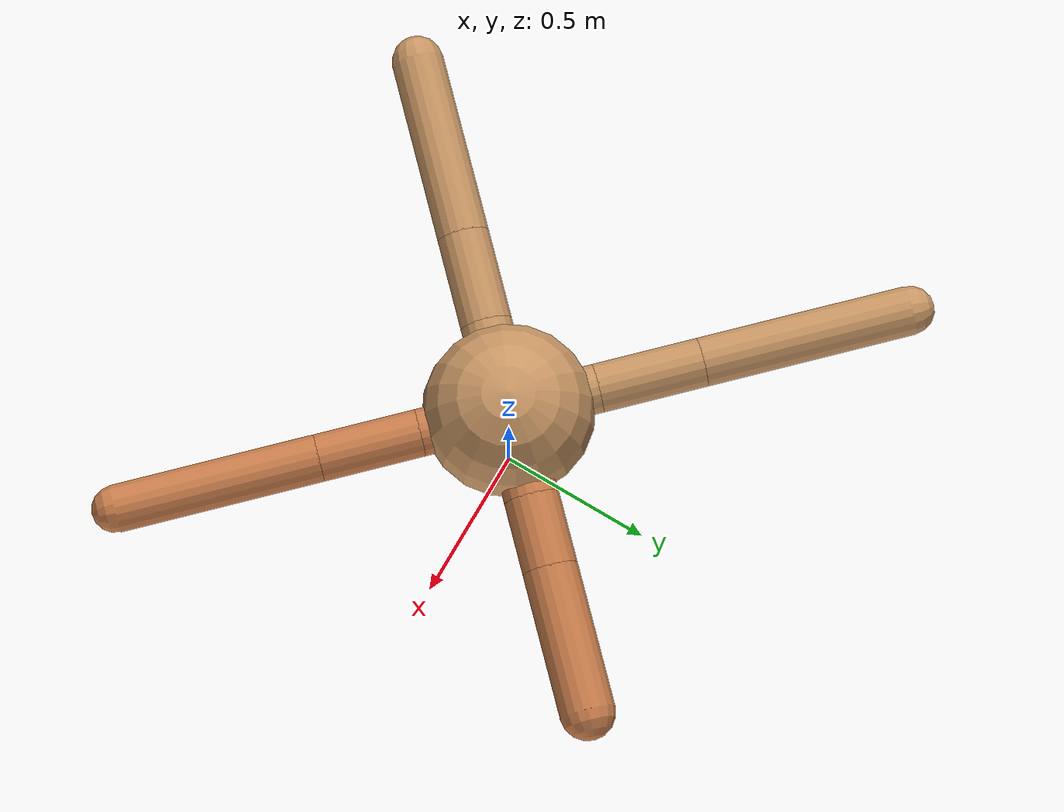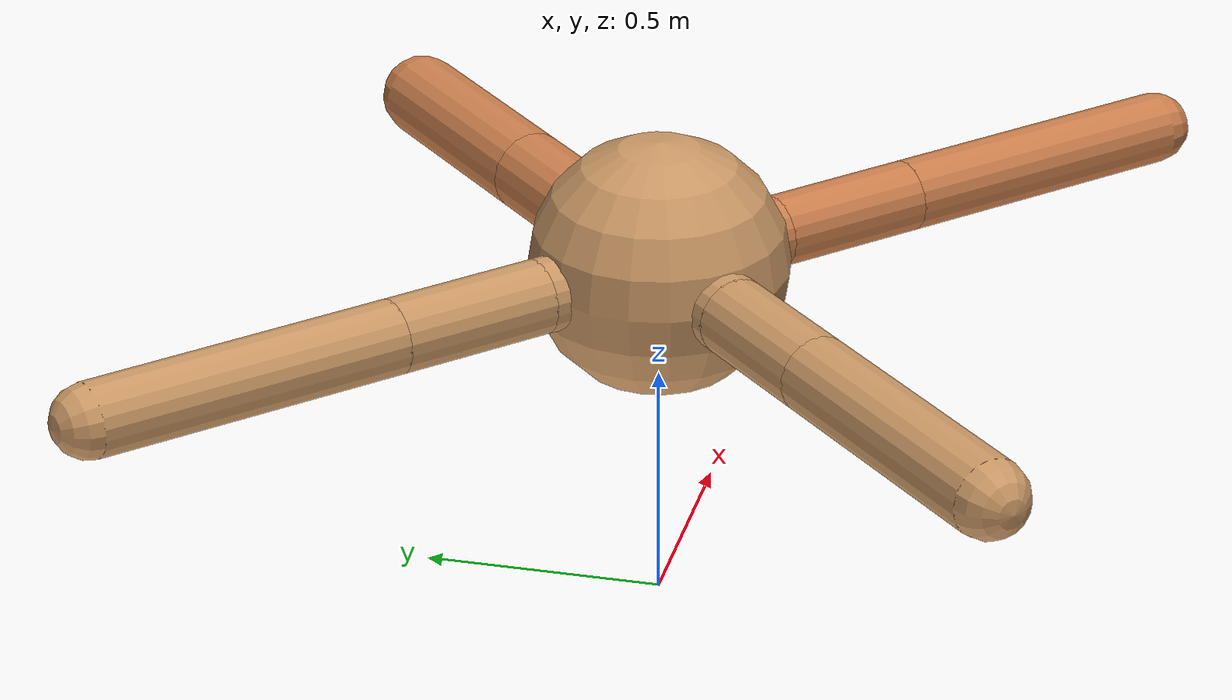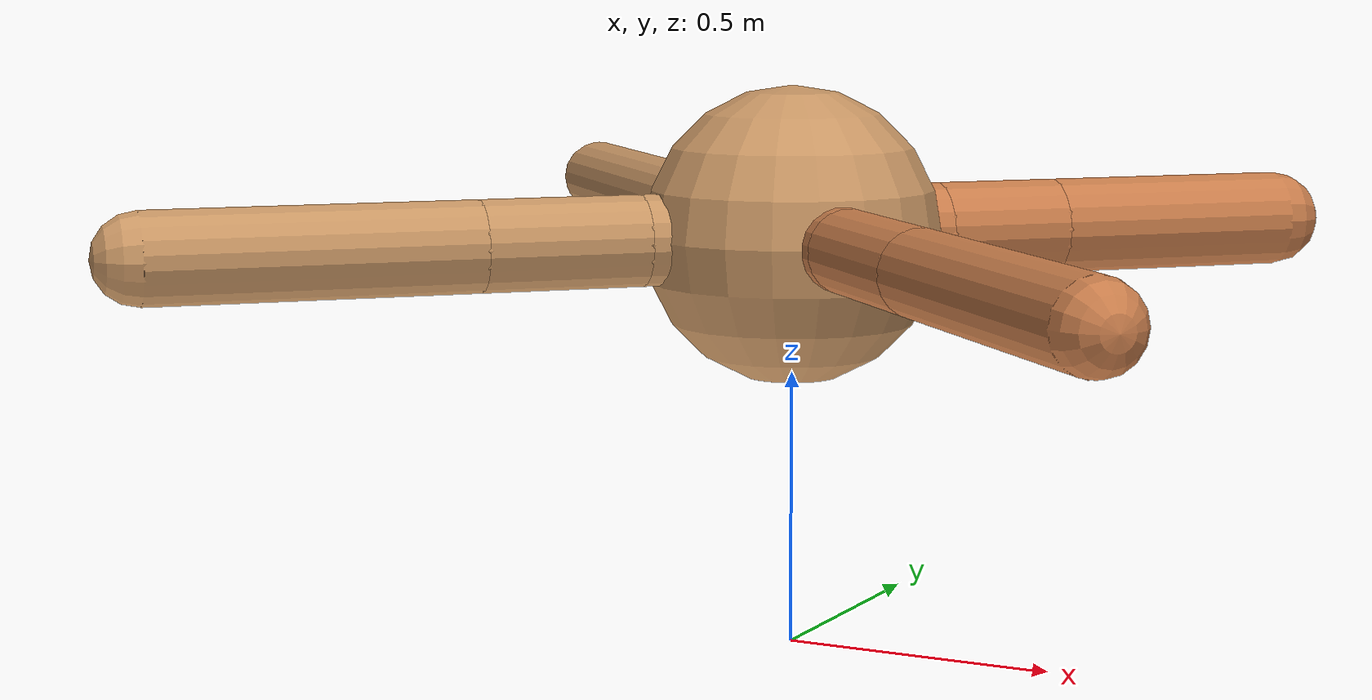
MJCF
<?xml version="1.0" ?>
<mujoco model="ant">

	<compiler angle="degree" coordinate="local" inertiafromgeom="true"/>

	<option integrator="RK4" timestep="0.01"/>

	<custom>

		<numeric data="0.0 0.0 0.55 1.0 0.0 0.0 0.0 0.0 1.0 0.0 -1.0 0.0 -1.0 0.0 1.0" name="init_qpos"/>

	</custom>

	<default>

		<joint armature="1" damping="1" limited="true"/>

		<geom conaffinity="0" condim="3" density="5.0" friction="1.5 0.1 0.1" margin="0.01" rgba="0.8 0.6 0.4 1"/>

	</default>

	<worldbody>

		<body name="torso" pos="0 0 0.75">

			<geom name="torso_geom" pos="0 0 0" size="0.26931153714262834" type="sphere"/>

			<!--joint armature="0" damping="0" limited="false" margin="0.01" name="root" pos="0 0 0" type="free"/-->

			<body name="front_left_leg" pos="0 0 0">

				<geom fromto="0 0 0 0.2 0.2 0" name="aux_1_geom" size="0.08663870466068854" type="capsule" rgba=".8 .5 .3 1"/>

				<body name="aux_1" pos="0.2 0.2 0">

					<joint axis="0 0 1" name="hip_1" pos="0.0 0.0 0.0" range="-40 40" type="hinge"/>

					<geom fromto="0 0 0 0.16180496491251797 0.16180496491251797 0" name="left_leg_geom" size="0.08663870466068854" type="capsule" rgba=".8 .5 .3 1"/>

					<body pos="0.16180496491251797 0.16180496491251797 0" name="front_left_foot">

						<joint axis="-1 1 0" name="ankle_1" pos="0.0 0.0 0.0" range="30 100" type="hinge"/>

						<geom fromto="0 0 0 0.32360992982503595 0.32360992982503595 0" name="left_ankle_geom" size="0.08663870466068854" type="capsule" rgba=".8 .5 .3 1"/>

					</body>

				</body>

			</body>

			<body name="front_right_leg" pos="0 0 0">

				<geom fromto="0 0 0 -0.2 0.2 0" name="aux_2_geom" size="0.07692889764563293" type="capsule"/>

				<body name="aux_2" pos="-0.2 0.2 0">

					<joint axis="0 0 1" name="hip_2" pos="0.0 0.0 0.0" range="-40 40" type="hinge"/>

					<geom fromto="0 0 0 -0.23586456133617448 0.23586456133617448 0" name="right_leg_geom" size="0.07692889764563293" type="capsule"/>

					<body pos="-0.23586456133617448 0.23586456133617448 0" name="front_right_foot">

						<joint axis="1 1 0" name="ankle_2" pos="0.0 0.0 0.0" range="-100 -30" type="hinge"/>

						<geom fromto="0 0 0 -0.47172912267234896 0.47172912267234896 0" name="right_ankle_geom" size="0.07692889764563293" type="capsule"/>

					</body>

				</body>

			</body>

			<body name="left_back_leg" pos="0 0 0">

				<geom fromto="0 0 0 -0.2 -0.2 0" name="aux_3_geom" size="0.08155187717620967" type="capsule"/>

				<body name="aux_3" pos="-0.2 -0.2 0">

					<joint axis="0 0 1" name="hip_3" pos="0.0 0.0 0.0" range="-40 40" type="hinge"/>

					<geom fromto="0 0 0 -0.2060133986245242 -0.2060133986245242 0" name="back_leg_geom" size="0.08155187717620967" type="capsule"/>

					<body pos="-0.2060133986245242 -0.2060133986245242 0" name="left_back_foot">

						<joint axis="-1 1 0" name="ankle_3" pos="0.0 0.0 0.0" range="-100 -30" type="hinge"/>

						<geom fromto="0 0 0 -0.4120267972490484 -0.4120267972490484 0" name="third_ankle_geom" size="0.08155187717620967" type="capsule"/>

					</body>

				</body>

			</body>

			<body name="right_back_leg" pos="0 0 0">

				<geom fromto="0 0 0 0.2 -0.2 0" name="aux_4_geom" size="0.07425919888363913" type="capsule" rgba=".8 .5 .3 1"/>

				<body name="aux_4" pos="0.2 -0.2 0">

					<joint axis="0 0 1" name="hip_4" pos="0.0 0.0 0.0" range="-40 40" type="hinge"/>

					<geom fromto="0 0 0 0.2270864442123351 -0.2270864442123351 0" name="rightback_leg_geom" size="0.07425919888363913" type="capsule" rgba=".8 .5 .3 1"/>

					<body pos="0.2270864442123351 -0.2270864442123351 0" name="right_back_foot">

						<joint axis="1 1 0" name="ankle_4" pos="0.0 0.0 0.0" range="30 100" type="hinge"/>

						<geom fromto="0 0 0 0.4541728884246702 -0.4541728884246702 0" name="fourth_ankle_geom" size="0.07425919888363913" type="capsule" rgba=".8 .5 .3 1"/>

					</body>

				</body>

			</body>

		</body>

	</worldbody>

	<actuator>

		<motor ctrllimited="true" ctrlrange="-1.0 1.0" joint="hip_4" gear="150"/>

		<motor ctrllimited="true" ctrlrange="-1.0 1.0" joint="ankle_4" gear="150"/>

		<motor ctrllimited="true" ctrlrange="-1.0 1.0" joint="hip_1" gear="150"/>

		<motor ctrllimited="true" ctrlrange="-1.0 1.0" joint="ankle_1" gear="150"/>

		<motor ctrllimited="true" ctrlrange="-1.0 1.0" joint="hip_2" gear="150"/>

		<motor ctrllimited="true" ctrlrange="-1.0 1.0" joint="ankle_2" gear="150"/>

		<motor ctrllimited="true" ctrlrange="-1.0 1.0" joint="hip_3" gear="150"/>

		<motor ctrllimited="true" ctrlrange="-1.0 1.0" joint="ankle_3" gear="150"/>

	</actuator>

</mujoco>
